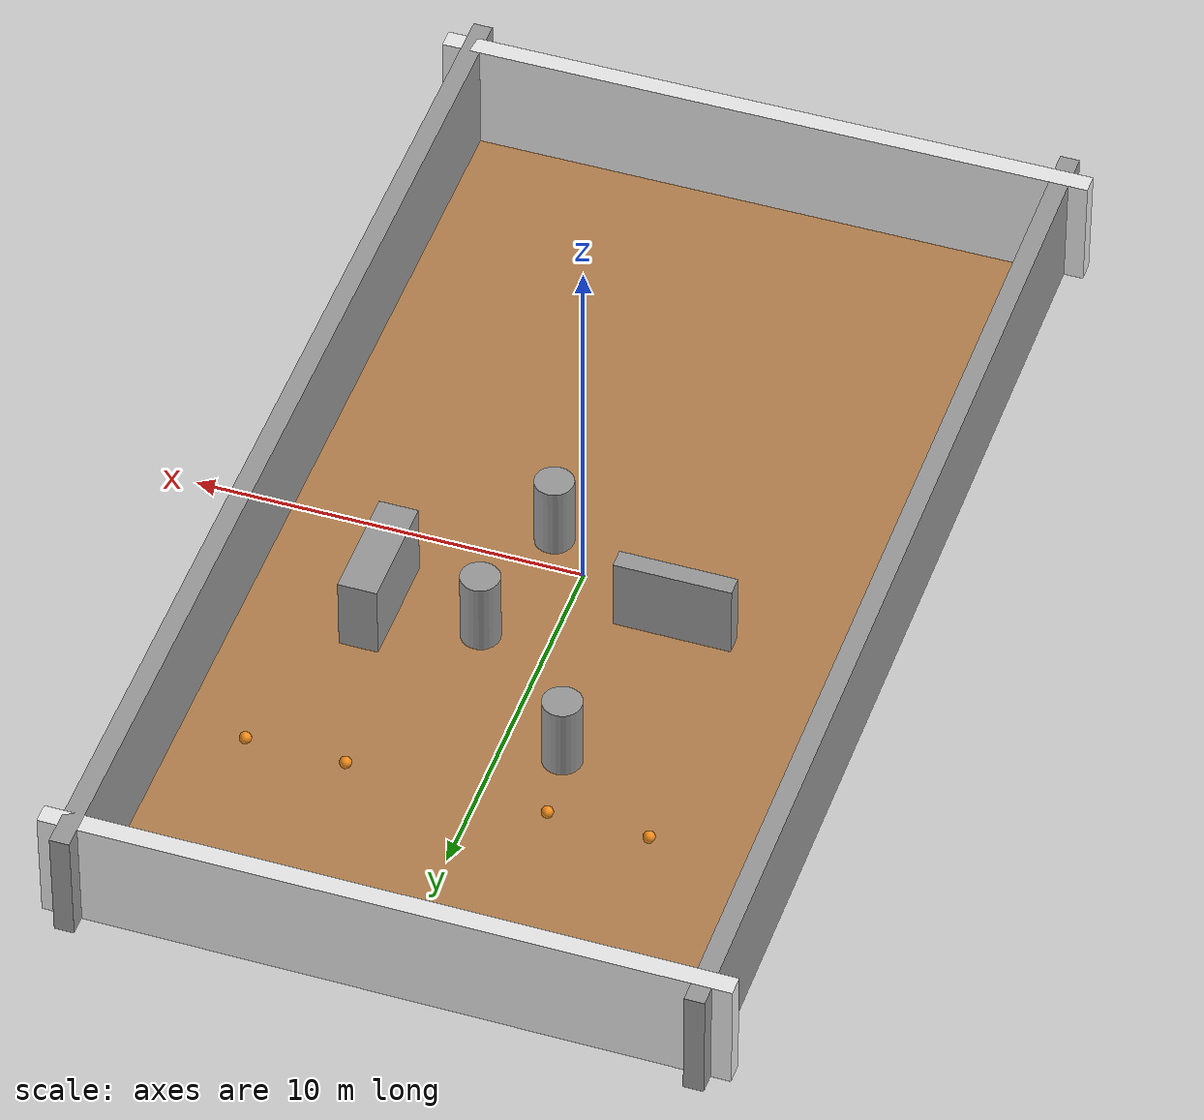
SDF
<sdf version="1.5">
 <world name="default">
  <include><uri>model://sun</uri></include>
  <include><pose>0 0 -0.5 0 0 0</pose><uri>model://ground_plane</uri></include>
  <include><uri>model://ascend_world</uri></include>
  <include>
   <uri>model://danger_sphere_obstacle</uri>
   <name>obstacle_1</name>
   <pose>5.0 10.0 2.5 0 0 0</pose>
  </include>
  <include>
   <uri>model://danger_sphere_obstacle</uri>
   <name>obstacle_2</name>
   <pose>2.5 10.0 2.5 0 0 0</pose>
  </include>
  <include>
   <uri>model://danger_sphere_obstacle</uri>
   <name>obstacle_3</name>
   <pose>-2.5 10.0 2.5 0 0 0</pose>
  </include>
  <include>
   <uri>model://danger_sphere_obstacle</uri>
   <name>obstacle_4</name>
   <pose>-5.0 10.0 2.5 0 0 0</pose>
  </include>
  <physics name="default_physics" default="0" type="ode">
   <gravity>0 0 -9.8066</gravity>
   <ode>
    <solver>
     <type>quick</type>
     <iters>10</iters>
     <sor>1.3</sor>
     <use_dynamic_moi_rescaling>0</use_dynamic_moi_rescaling>
    </solver>
    <constraints>
     <cfm>0</cfm>
     <erp>0.2</erp>
     <contact_max_correcting_vel>100</contact_max_correcting_vel>
     <contact_surface_layer>0.001</contact_surface_layer>
    </constraints>
   </ode>
   <max_step_size>0.002</max_step_size>
   <real_time_factor>1</real_time_factor>
   <real_time_update_rate>500</real_time_update_rate>
   <magnetic_field>6.0e-6 2.3e-5 -4.2e-5</magnetic_field>
  </physics>
 </world>
</sdf>

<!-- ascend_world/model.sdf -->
<sdf version="1.6">
  <model name='base'>
    <model name='unit_cylinder'>
      <pose frame=''>1.6974 2.70537 1 0 -0 0</pose>
      <static>true</static>
      <link name='link'>
        <inertial>
          <mass>1</mass>
          <inertia>
            <ixx>0.145833</ixx>
            <ixy>0</ixy>
            <ixz>0</ixz>
            <iyy>0.145833</iyy>
            <iyz>0</iyz>
            <izz>0.125</izz>
          </inertia>
        </inertial>
        <collision name='collision'>
          <geometry>
            <cylinder>
              <radius>0.5</radius>
              <length>2</length>
            </cylinder>
          </geometry>
          <max_contacts>10</max_contacts>
          <surface>
            <contact>
              <ode/>
            </contact>
            <bounce/>
            <friction>
              <torsional>
                <ode/>
              </torsional>
              <ode/>
            </friction>
          </surface>
        </collision>
        <visual name='visual'>
          <geometry>
            <cylinder>
              <radius>0.5</radius>
              <length>2</length>
            </cylinder>
          </geometry>
          <material>
            <script>
              <name>Gazebo/Grey</name>
              <uri>file://media/materials/scripts/gazebo.material</uri>
            </script>
          </material>
        </visual>
        <self_collide>0</self_collide>
        <kinematic>0</kinematic>
      </link>
    </model>
    <model name='unit_box'>
      <pose frame=''>-2.69557 1.06476 1 0 -0 0</pose>
      <static>true</static>
      <link name='link'>
        <inertial>
          <mass>1</mass>
          <inertia>
            <ixx>0.166667</ixx>
            <ixy>0</ixy>
            <ixz>0</ixz>
            <iyy>0.166667</iyy>
            <iyz>0</iyz>
            <izz>0.166667</izz>
          </inertia>
        </inertial>
        <collision name='collision'>
          <geometry>
            <box>
              <size>3 0.5 2</size>
            </box>
          </geometry>
          <max_contacts>10</max_contacts>
          <surface>
            <contact>
              <ode/>
            </contact>
            <bounce/>
            <friction>
              <torsional>
                <ode/>
              </torsional>
              <ode/>
            </friction>
          </surface>
        </collision>
        <visual name='visual'>
          <geometry>
            <box>
              <size>3 0.5 2</size>
            </box>
          </geometry>
          <material>
            <script>
              <name>Gazebo/Grey</name>
              <uri>file://media/materials/scripts/gazebo.material</uri>
            </script>
          </material>
        </visual>
        <self_collide>0</self_collide>
        <kinematic>0</kinematic>
      </link>
    </model>
    <model name='unit_cylinder_0'>
      <pose frame=''>-1.51424 6.02496 1 0 -0 0</pose>
      <static>true</static>
      <link name='link'>
        <inertial>
          <mass>1</mass>
          <inertia>
            <ixx>0.145833</ixx>
            <ixy>0</ixy>
            <ixz>0</ixz>
            <iyy>0.145833</iyy>
            <iyz>0</iyz>
            <izz>0.125</izz>
          </inertia>
        </inertial>
        <collision name='collision'>
          <geometry>
            <cylinder>
              <radius>0.5</radius>
              <length>2</length>
            </cylinder>
          </geometry>
          <max_contacts>10</max_contacts>
          <surface>
            <contact>
              <ode/>
            </contact>
            <bounce/>
            <friction>
              <torsional>
                <ode/>
              </torsional>
              <ode/>
            </friction>
          </surface>
        </collision>
        <visual name='visual'>
          <geometry>
            <cylinder>
              <radius>0.5</radius>
              <length>2</length>
            </cylinder>
          </geometry>
          <material>
            <script>
              <name>Gazebo/Grey</name>
              <uri>file://media/materials/scripts/gazebo.material</uri>
            </script>
          </material>
        </visual>
        <self_collide>0</self_collide>
        <kinematic>0</kinematic>
      </link>
    </model>
    <model name='unit_cylinder_1'>
      <pose frame=''>1.06564 -0.957164 1 0 -0 0</pose>
      <static>true</static>
      <link name='link'>
        <inertial>
          <mass>1</mass>
          <inertia>
            <ixx>0.145833</ixx>
            <ixy>0</ixy>
            <ixz>0</ixz>
            <iyy>0.145833</iyy>
            <iyz>0</iyz>
            <izz>0.125</izz>
          </inertia>
        </inertial>
        <collision name='collision'>
          <geometry>
            <cylinder>
              <radius>0.5</radius>
              <length>2</length>
            </cylinder>
          </geometry>
          <max_contacts>10</max_contacts>
          <surface>
            <contact>
              <ode/>
            </contact>
            <bounce/>
            <friction>
              <torsional>
                <ode/>
              </torsional>
              <ode/>
            </friction>
          </surface>
        </collision>
        <visual name='visual'>
          <geometry>
            <cylinder>
              <radius>0.5</radius>
              <length>2</length>
            </cylinder>
          </geometry>
          <material>
            <script>
              <name>Gazebo/Grey</name>
              <uri>file://media/materials/scripts/gazebo.material</uri>
            </script>
          </material>
        </visual>
        <self_collide>0</self_collide>
        <kinematic>0</kinematic>
      </link>
    </model>
    <model name='unit_box_0'>
      <pose frame=''>4.35075 2.55387 1 0 -0 0</pose>
      <static>true</static>
      <link name='link'>
        <inertial>
          <mass>1</mass>
          <inertia>
            <ixx>0.166667</ixx>
            <ixy>0</ixy>
            <ixz>0</ixz>
            <iyy>0.166667</iyy>
            <iyz>0</iyz>
            <izz>0.166667</izz>
          </inertia>
        </inertial>
        <collision name='collision'>
          <geometry>
            <box>
              <size>1 3 2</size>
            </box>
          </geometry>
          <max_contacts>10</max_contacts>
          <surface>
            <contact>
              <ode/>
            </contact>
            <bounce/>
            <friction>
              <torsional>
                <ode/>
              </torsional>
              <ode/>
            </friction>
          </surface>
        </collision>
        <visual name='visual'>
          <geometry>
            <box>
              <size>1 3 2</size>
            </box>
          </geometry>
          <material>
            <script>
              <name>Gazebo/Grey</name>
              <uri>file://media/materials/scripts/gazebo.material</uri>
            </script>
          </material>
        </visual>
        <self_collide>0</self_collide>
        <kinematic>0</kinematic>
      </link>
    </model>

    <model name='floor'>
      <pose frame=''>0 0 -0.1 0 -0 0</pose>
      <static>true</static>
      <link name='link'>
        <inertial>
          <mass>1</mass>
          <inertia>
            <ixx>0.166667</ixx>
            <ixy>0</ixy>
            <ixz>0</ixz>
            <iyy>0.166667</iyy>
            <iyz>0</iyz>
            <izz>0.166667</izz>
          </inertia>
        </inertial>
        <collision name='collision'>
          <geometry>
            <box>
              <size>15 28 0.2</size>
            </box>
          </geometry>
          <max_contacts>10</max_contacts>
          <surface>
            <contact>
              <ode/>
            </contact>
            <bounce/>
            <friction>
              <torsional>
                <ode/>
              </torsional>
              <ode/>
            </friction>
          </surface>
        </collision>
        <visual name='visual'>
          <geometry>
            <box>
              <size>15 28 0.2</size>
            </box>
          </geometry>
          <material>
            <script>
              <name>Gazebo/Wood</name>
              <uri>file://media/materials/scripts/gazebo.material</uri>
            </script>
          </material>
        </visual>
        <self_collide>0</self_collide>
        <kinematic>0</kinematic>
      </link>
    </model>
    <model name='wall_0'>
      <pose frame=''>0 14.25 1.5 0 -0 0</pose>
      <static>true</static>
      <link name='link'>
        <inertial>
          <mass>1</mass>
          <inertia>
            <ixx>0.166667</ixx>
            <ixy>0</ixy>
            <ixz>0</ixz>
            <iyy>0.166667</iyy>
            <iyz>0</iyz>
            <izz>0.166667</izz>
          </inertia>
        </inertial>
        <collision name='collision'>
          <geometry>
            <box>
              <size>17 0.5 3</size>
            </box>
          </geometry>
          <max_contacts>10</max_contacts>
          <surface>
            <contact>
              <ode/>
            </contact>
            <bounce/>
            <friction>
              <torsional>
                <ode/>
              </torsional>
              <ode/>
            </friction>
          </surface>
        </collision>
        <visual name='visual'>
          <geometry>
            <box>
              <size>17 0.5 3</size>
            </box>
          </geometry>
          <material>
            <script>
              <name>Gazebo/White</name>
              <uri>file://media/materials/scripts/gazebo.material</uri>
            </script>
          </material>
        </visual>
        <self_collide>0</self_collide>
        <kinematic>0</kinematic>
      </link>
    </model>
    <model name='wall_1'>
      <pose frame=''>0 -14.25 1.5 0 -0 0</pose>
      <static>true</static>
      <link name='link'>
        <inertial>
          <mass>1</mass>
          <inertia>
            <ixx>0.166667</ixx>
            <ixy>0</ixy>
            <ixz>0</ixz>
            <iyy>0.166667</iyy>
            <iyz>0</iyz>
            <izz>0.166667</izz>
          </inertia>
        </inertial>
        <collision name='collision'>
          <geometry>
            <box>
              <size>17 0.5 3</size>
            </box>
          </geometry>
          <max_contacts>10</max_contacts>
          <surface>
            <contact>
              <ode/>
            </contact>
            <bounce/>
            <friction>
              <torsional>
                <ode/>
              </torsional>
              <ode/>
            </friction>
          </surface>
        </collision>
        <visual name='visual'>
          <geometry>
            <box>
              <size>17 0.5 3</size>
            </box>
          </geometry>
          <material>
            <script>
              <name>Gazebo/White</name>
              <uri>file://media/materials/scripts/gazebo.material</uri>
            </script>
          </material>
        </visual>
        <self_collide>0</self_collide>
        <kinematic>0</kinematic>
      </link>
    </model>
    <model name='wall_2'>
      <pose frame=''>7.75 0 1.5 0 -0 0</pose>
      <static>true</static>
      <link name='link'>
        <inertial>
          <mass>1</mass>
          <inertia>
            <ixx>0.166667</ixx>
            <ixy>0</ixy>
            <ixz>0</ixz>
            <iyy>0.166667</iyy>
            <iyz>0</iyz>
            <izz>0.166667</izz>
          </inertia>
        </inertial>
        <collision name='collision'>
          <geometry>
            <box>
              <size>0.5 30 3</size>
            </box>
          </geometry>
          <max_contacts>10</max_contacts>
          <surface>
            <contact>
              <ode/>
            </contact>
            <bounce/>
            <friction>
              <torsional>
                <ode/>
              </torsional>
              <ode/>
            </friction>
          </surface>
        </collision>
        <visual name='visual'>
          <geometry>
            <box>
              <size>0.5 30 3</size>
            </box>
          </geometry>
          <material>
            <script>
              <name>Gazebo/Grey</name>
              <uri>file://media/materials/scripts/gazebo.material</uri>
            </script>
          </material>
        </visual>
        <self_collide>0</self_collide>
        <kinematic>0</kinematic>
      </link>
    </model>
    <model name='wall_3'>
      <pose frame=''>-7.75 0 1.5 0 -0 0</pose>
      <static>true</static>
      <link name='link'>
        <inertial>
          <mass>1</mass>
          <inertia>
            <ixx>0.166667</ixx>
            <ixy>0</ixy>
            <ixz>0</ixz>
            <iyy>0.166667</iyy>
            <iyz>0</iyz>
            <izz>0.166667</izz>
          </inertia>
        </inertial>
        <collision name='collision'>
          <geometry>
            <box>
              <size>0.5 30 3</size>
            </box>
          </geometry>
          <max_contacts>10</max_contacts>
          <surface>
            <contact>
              <ode/>
            </contact>
            <bounce/>
            <friction>
              <torsional>
                <ode/>
              </torsional>
              <ode/>
            </friction>
          </surface>
        </collision>
        <visual name='visual'>
          <geometry>
            <box>
              <size>0.5 30 3</size>
            </box>
          </geometry>
          <material>
            <script>
              <name>Gazebo/Grey</name>
              <uri>file://media/materials/scripts/gazebo.material</uri>
            </script>
          </material>
        </visual>
        <self_collide>0</self_collide>
        <kinematic>0</kinematic>
      </link>
    </model>
  </model>
</sdf>

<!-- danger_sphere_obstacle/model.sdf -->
<sdf version="1.6">
  <model name="danger_sphere_obstacle">
    <link name="base">
      <collision name="collision">
        <geometry>
          <box>
            <size>0.3 0.3 0.3</size>
          </box>
        </geometry>
      </collision>
      <visual name="visual">
        <cast_shadows>true</cast_shadows>
        <material>
            <script>
                <uri>file://media/materials/scripts/gazebo.material</uri>
                <name>Gazebo/Orange</name>
            </script>
        </material>
        <geometry>
          <sphere>
            <radius>0.15</radius>
          </sphere>
        </geometry>
      </visual>
    </link>
    <plugin name="enemy_drone" filename="libenemy_drone.so">
      <x_min>-7.5</x_min>
      <x_max>7.5</x_max>
      <y_min>-11.5</y_min>
      <y_max>11.5</y_max>
    </plugin>
  </model>
</sdf>
